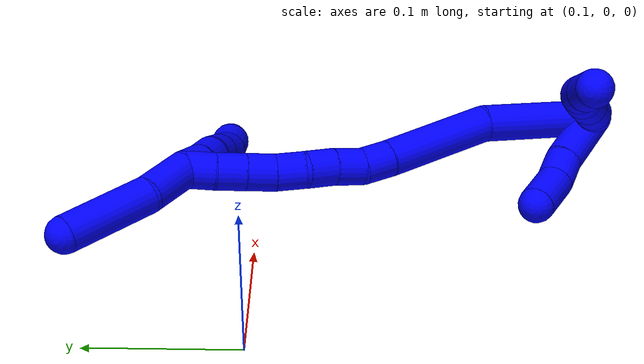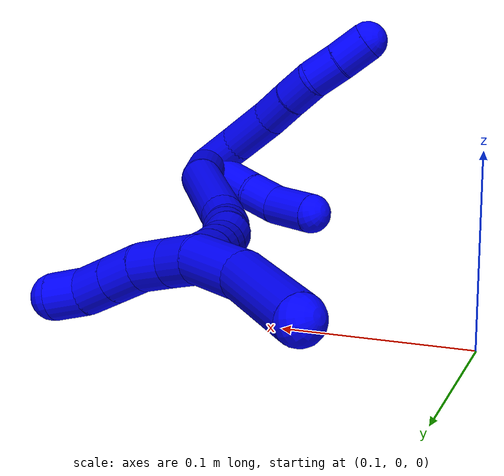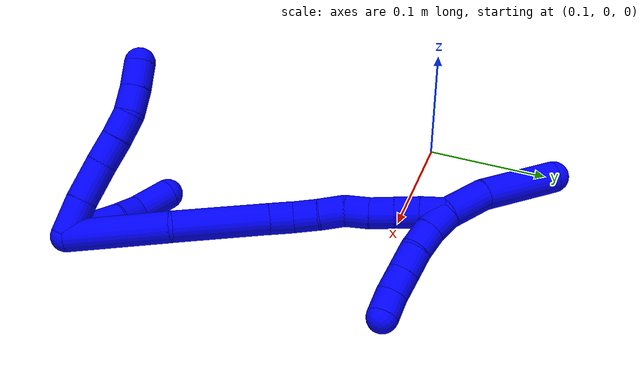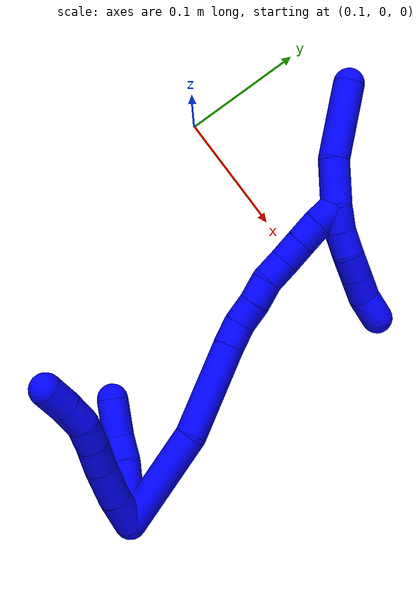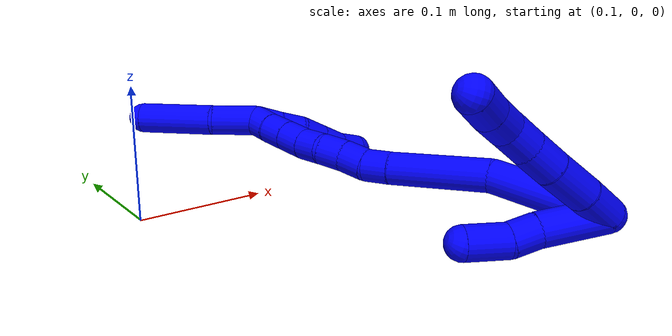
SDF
<sdf version="1.7">
 <world name="default">
  <model name="1">
   <static>0</static>
   <link name="1">
    <collision name="collision-cylinder-e_1_2_8">
     <pose>-0.003583 -0.004819 -0.0138 2.8056 -0.240364 -1.23756</pose>
     <geometry><cylinder><radius>0.0125</radius><length>0.0301</length></cylinder></geometry>
     <surface>
      <friction><ode><mu>1.16</mu><mu2>1.16</mu2><slip1>0</slip1><slip2>0</slip2></ode></friction>
      <contact><ode><kp>1e+06</kp><kd>1</kd><max_vel>0</max_vel><min_depth>0.001</min_depth></ode></contact>
     </surface>
    </collision>
    <visual name="visual-cylinder-e_1_2_8">
     <pose>-0.003583 -0.004819 -0.0138 2.8056 -0.240364 -1.23756</pose>
     <geometry><cylinder><radius>0.0125</radius><length>0.0301</length></cylinder></geometry>
     <material><ambient>0 0 1 1</ambient></material>
    </visual>
    <collision name="collision-cylinder-e_2_8_9">
     <pose>-0.011387 -0.013422 -0.043083 2.90197 -0.258942 -1.64907</pose>
     <geometry><cylinder><radius>0.0125</radius><length>0.032975</length></cylinder></geometry>
     <surface>
      <friction><ode><mu>1.16</mu><mu2>1.16</mu2><slip1>0</slip1><slip2>0</slip2></ode></friction>
      <contact><ode><kp>1e+06</kp><kd>1</kd><max_vel>0</max_vel><min_depth>0.001</min_depth></ode></contact>
     </surface>
    </collision>
    <visual name="visual-cylinder-e_2_8_9">
     <pose>-0.011387 -0.013422 -0.043083 2.90197 -0.258942 -1.64907</pose>
     <geometry><cylinder><radius>0.0125</radius><length>0.032975</length></cylinder></geometry>
     <material><ambient>0 0 1 1</ambient></material>
    </visual>
    <collision name="collision-cylinder-e_3_9_10">
     <pose>-0.01925 -0.019206 -0.069372 2.95849 -0.319868 -2.10675</pose>
     <geometry><cylinder><radius>0.0125</radius><length>0.023157</length></cylinder></geometry>
     <surface>
      <friction><ode><mu>1.16</mu><mu2>1.16</mu2><slip1>0</slip1><slip2>0</slip2></ode></friction>
      <contact><ode><kp>1e+06</kp><kd>1</kd><max_vel>0</max_vel><min_depth>0.001</min_depth></ode></contact>
     </surface>
    </collision>
    <visual name="visual-cylinder-e_3_9_10">
     <pose>-0.01925 -0.019206 -0.069372 2.95849 -0.319868 -2.10675</pose>
     <geometry><cylinder><radius>0.0125</radius><length>0.023157</length></cylinder></geometry>
     <material><ambient>0 0 1 1</ambient></material>
    </visual>
    <collision name="collision-cylinder-e_4_10_11">
     <pose>-0.025966 -0.023775 -0.090021 2.88638 -0.293655 -1.71238</pose>
     <geometry><cylinder><radius>0.0125</radius><length>0.021251</length></cylinder></geometry>
     <surface>
      <friction><ode><mu>1.16</mu><mu2>1.16</mu2><slip1>0</slip1><slip2>0</slip2></ode></friction>
      <contact><ode><kp>1e+06</kp><kd>1</kd><max_vel>0</max_vel><min_depth>0.001</min_depth></ode></contact>
     </surface>
    </collision>
    <visual name="visual-cylinder-e_4_10_11">
     <pose>-0.025966 -0.023775 -0.090021 2.88638 -0.293655 -1.71238</pose>
     <geometry><cylinder><radius>0.0125</radius><length>0.021251</length></cylinder></geometry>
     <material><ambient>0 0 1 1</ambient></material>
    </visual>
    <collision name="collision-cylinder-e_5_11_12">
     <pose>-0.0305 -0.031369 -0.108844 2.63133 -0.140719 -0.527826</pose>
     <geometry><cylinder><radius>0.0125</radius><length>0.02079</length></cylinder></geometry>
     <surface>
      <friction><ode><mu>1.16</mu><mu2>1.16</mu2><slip1>0</slip1><slip2>0</slip2></ode></friction>
      <contact><ode><kp>1e+06</kp><kd>1</kd><max_vel>0</max_vel><min_depth>0.001</min_depth></ode></contact>
     </surface>
    </collision>
    <visual name="visual-cylinder-e_5_11_12">
     <pose>-0.0305 -0.031369 -0.108844 2.63133 -0.140719 -0.527826</pose>
     <geometry><cylinder><radius>0.0125</radius><length>0.02079</length></cylinder></geometry>
     <material><ambient>0 0 1 1</ambient></material>
    </visual>
    <collision name="collision-cylinder-e_6_12_6">
     <pose>-0.033733 -0.042397 -0.126704 2.54721 -0.164187 -0.524917</pose>
     <geometry><cylinder><radius>0.0125</radius><length>0.021726</length></cylinder></geometry>
     <surface>
      <friction><ode><mu>1.16</mu><mu2>1.16</mu2><slip1>0</slip1><slip2>0</slip2></ode></friction>
      <contact><ode><kp>1e+06</kp><kd>1</kd><max_vel>0</max_vel><min_depth>0.001</min_depth></ode></contact>
     </surface>
    </collision>
    <visual name="visual-cylinder-e_6_12_6">
     <pose>-0.033733 -0.042397 -0.126704 2.54721 -0.164187 -0.524917</pose>
     <geometry><cylinder><radius>0.0125</radius><length>0.021726</length></cylinder></geometry>
     <material><ambient>0 0 1 1</ambient></material>
    </visual>
    <collision name="collision-cylinder-e_1_2_13">
     <pose>0.009976 0.006897 -0.020728 -2.82036 0.428388 -1.8613</pose>
     <geometry><cylinder><radius>0.0125</radius><length>0.048032</length></cylinder></geometry>
     <surface>
      <friction><ode><mu>1.16</mu><mu2>1.16</mu2><slip1>0</slip1><slip2>0</slip2></ode></friction>
      <contact><ode><kp>1e+06</kp><kd>1</kd><max_vel>0</max_vel><min_depth>0.001</min_depth></ode></contact>
     </surface>
    </collision>
    <visual name="visual-cylinder-e_1_2_13">
     <pose>0.009976 0.006897 -0.020728 -2.82036 0.428388 -1.8613</pose>
     <geometry><cylinder><radius>0.0125</radius><length>0.048032</length></cylinder></geometry>
     <material><ambient>0 0 1 1</ambient></material>
    </visual>
    <collision name="collision-cylinder-e_2_13_14">
     <pose>0.025456 0.015484 -0.050087 -2.94827 0.559146 -2.49016</pose>
     <geometry><cylinder><radius>0.0125</radius><length>0.020749</length></cylinder></geometry>
     <surface>
      <friction><ode><mu>1.16</mu><mu2>1.16</mu2><slip1>0</slip1><slip2>0</slip2></ode></friction>
      <contact><ode><kp>1e+06</kp><kd>1</kd><max_vel>0</max_vel><min_depth>0.001</min_depth></ode></contact>
     </surface>
    </collision>
    <visual name="visual-cylinder-e_2_13_14">
     <pose>0.025456 0.015484 -0.050087 -2.94827 0.559146 -2.49016</pose>
     <geometry><cylinder><radius>0.0125</radius><length>0.020749</length></cylinder></geometry>
     <material><ambient>0 0 1 1</ambient></material>
    </visual>
    <collision name="collision-cylinder-e_3_14_5">
     <pose>0.035246 0.019913 -0.073475 -2.95806 0.278187 -1.97857</pose>
     <geometry><cylinder><radius>0.0125</radius><length>0.031219</length></cylinder></geometry>
     <surface>
      <friction><ode><mu>1.16</mu><mu2>1.16</mu2><slip1>0</slip1><slip2>0</slip2></ode></friction>
      <contact><ode><kp>1e+06</kp><kd>1</kd><max_vel>0</max_vel><min_depth>0.001</min_depth></ode></contact>
     </surface>
    </collision>
    <visual name="visual-cylinder-e_3_14_5">
     <pose>0.035246 0.019913 -0.073475 -2.95806 0.278187 -1.97857</pose>
     <geometry><cylinder><radius>0.0125</radius><length>0.031219</length></cylinder></geometry>
     <material><ambient>0 0 1 1</ambient></material>
    </visual>
    <collision name="collision-cylinder-e_1_2_15">
     <pose>-0.008202 0.029589 -0.028339 -2.33461 -0.197569 0.456215</pose>
     <geometry><cylinder><radius>0.0125</radius><length>0.083567</length></cylinder></geometry>
     <surface>
      <friction><ode><mu>1.16</mu><mu2>1.16</mu2><slip1>0</slip1><slip2>0</slip2></ode></friction>
      <contact><ode><kp>1e+06</kp><kd>1</kd><max_vel>0</max_vel><min_depth>0.001</min_depth></ode></contact>
     </surface>
    </collision>
    <visual name="visual-cylinder-e_1_2_15">
     <pose>-0.008202 0.029589 -0.028339 -2.33461 -0.197569 0.456215</pose>
     <geometry><cylinder><radius>0.0125</radius><length>0.083567</length></cylinder></geometry>
     <material><ambient>0 0 1 1</ambient></material>
    </visual>
    <collision name="collision-cylinder-e_2_15_16">
     <pose>-0.01384 0.084177 -0.085011 -2.41864 0.067739 -0.178753</pose>
     <geometry><cylinder><radius>0.0125</radius><length>0.075744</length></cylinder></geometry>
     <surface>
      <friction><ode><mu>1.16</mu><mu2>1.16</mu2><slip1>0</slip1><slip2>0</slip2></ode></friction>
      <contact><ode><kp>1e+06</kp><kd>1</kd><max_vel>0</max_vel><min_depth>0.001</min_depth></ode></contact>
     </surface>
    </collision>
    <visual name="visual-cylinder-e_2_15_16">
     <pose>-0.01384 0.084177 -0.085011 -2.41864 0.067739 -0.178753</pose>
     <geometry><cylinder><radius>0.0125</radius><length>0.075744</length></cylinder></geometry>
     <material><ambient>0 0 1 1</ambient></material>
    </visual>
    <collision name="collision-cylinder-e_3_16_17">
     <pose>-0.011128 0.116044 -0.120724 -2.39205 0.014653 -0.037247</pose>
     <geometry><cylinder><radius>0.0125</radius><length>0.020165</length></cylinder></geometry>
     <surface>
      <friction><ode><mu>1.16</mu><mu2>1.16</mu2><slip1>0</slip1><slip2>0</slip2></ode></friction>
      <contact><ode><kp>1e+06</kp><kd>1</kd><max_vel>0</max_vel><min_depth>0.001</min_depth></ode></contact>
     </surface>
    </collision>
    <visual name="visual-cylinder-e_3_16_17">
     <pose>-0.011128 0.116044 -0.120724 -2.39205 0.014653 -0.037247</pose>
     <geometry><cylinder><radius>0.0125</radius><length>0.020165</length></cylinder></geometry>
     <material><ambient>0 0 1 1</ambient></material>
    </visual>
    <collision name="collision-cylinder-e_4_17_18">
     <pose>-0.01343 0.129975 -0.134813 -2.33055 -0.246314 0.561423</pose>
     <geometry><cylinder><radius>0.0125</radius><length>0.020089</length></cylinder></geometry>
     <surface>
      <friction><ode><mu>1.16</mu><mu2>1.16</mu2><slip1>0</slip1><slip2>0</slip2></ode></friction>
      <contact><ode><kp>1e+06</kp><kd>1</kd><max_vel>0</max_vel><min_depth>0.001</min_depth></ode></contact>
     </surface>
    </collision>
    <visual name="visual-cylinder-e_4_17_18">
     <pose>-0.01343 0.129975 -0.134813 -2.33055 -0.246314 0.561423</pose>
     <geometry><cylinder><radius>0.0125</radius><length>0.020089</length></cylinder></geometry>
     <material><ambient>0 0 1 1</ambient></material>
    </visual>
    <collision name="collision-cylinder-e_5_18_19">
     <pose>-0.017456 0.143716 -0.149038 -2.41512 -0.155598 0.404575</pose>
     <geometry><cylinder><radius>0.0125</radius><length>0.020354</length></cylinder></geometry>
     <surface>
      <friction><ode><mu>1.16</mu><mu2>1.16</mu2><slip1>0</slip1><slip2>0</slip2></ode></friction>
      <contact><ode><kp>1e+06</kp><kd>1</kd><max_vel>0</max_vel><min_depth>0.001</min_depth></ode></contact>
     </surface>
    </collision>
    <visual name="visual-cylinder-e_5_18_19">
     <pose>-0.017456 0.143716 -0.149038 -2.41512 -0.155598 0.404575</pose>
     <geometry><cylinder><radius>0.0125</radius><length>0.020354</length></cylinder></geometry>
     <material><ambient>0 0 1 1</ambient></material>
    </visual>
    <collision name="collision-cylinder-e_6_19_20">
     <pose>-0.020557 0.158672 -0.161974 -2.15061 -0.152788 0.281377</pose>
     <geometry><cylinder><radius>0.0125</radius><length>0.020021</length></cylinder></geometry>
     <surface>
      <friction><ode><mu>1.16</mu><mu2>1.16</mu2><slip1>0</slip1><slip2>0</slip2></ode></friction>
      <contact><ode><kp>1e+06</kp><kd>1</kd><max_vel>0</max_vel><min_depth>0.001</min_depth></ode></contact>
     </surface>
    </collision>
    <visual name="visual-cylinder-e_6_19_20">
     <pose>-0.020557 0.158672 -0.161974 -2.15061 -0.152788 0.281377</pose>
     <geometry><cylinder><radius>0.0125</radius><length>0.020021</length></cylinder></geometry>
     <material><ambient>0 0 1 1</ambient></material>
    </visual>
    <collision name="collision-cylinder-e_7_20_21">
     <pose>-0.024772 0.174543 -0.173363 -2.23685 -0.271774 0.548511</pose>
     <geometry><cylinder><radius>0.0125</radius><length>0.020054</length></cylinder></geometry>
     <surface>
      <friction><ode><mu>1.16</mu><mu2>1.16</mu2><slip1>0</slip1><slip2>0</slip2></ode></friction>
      <contact><ode><kp>1e+06</kp><kd>1</kd><max_vel>0</max_vel><min_depth>0.001</min_depth></ode></contact>
     </surface>
    </collision>
    <visual name="visual-cylinder-e_7_20_21">
     <pose>-0.024772 0.174543 -0.173363 -2.23685 -0.271774 0.548511</pose>
     <geometry><cylinder><radius>0.0125</radius><length>0.020054</length></cylinder></geometry>
     <material><ambient>0 0 1 1</ambient></material>
    </visual>
    <collision name="collision-cylinder-e_8_21_22">
     <pose>-0.030122 0.189755 -0.185241 -2.23064 -0.269002 0.539069</pose>
     <geometry><cylinder><radius>0.0125</radius><length>0.02</length></cylinder></geometry>
     <surface>
      <friction><ode><mu>1.16</mu><mu2>1.16</mu2><slip1>0</slip1><slip2>0</slip2></ode></friction>
      <contact><ode><kp>1e+06</kp><kd>1</kd><max_vel>0</max_vel><min_depth>0.001</min_depth></ode></contact>
     </surface>
    </collision>
    <visual name="visual-cylinder-e_8_21_22">
     <pose>-0.030122 0.189755 -0.185241 -2.23064 -0.269002 0.539069</pose>
     <geometry><cylinder><radius>0.0125</radius><length>0.02</length></cylinder></geometry>
     <material><ambient>0 0 1 1</ambient></material>
    </visual>
    <collision name="collision-cylinder-e_9_22_1">
     <pose>-0.035837 0.205382 -0.196301 -2.1422 -0.310631 0.558642</pose>
     <geometry><cylinder><radius>0.0125</radius><length>0.020004</length></cylinder></geometry>
     <surface>
      <friction><ode><mu>1.16</mu><mu2>1.16</mu2><slip1>0</slip1><slip2>0</slip2></ode></friction>
      <contact><ode><kp>1e+06</kp><kd>1</kd><max_vel>0</max_vel><min_depth>0.001</min_depth></ode></contact>
     </surface>
    </collision>
    <visual name="visual-cylinder-e_9_22_1">
     <pose>-0.035837 0.205382 -0.196301 -2.1422 -0.310631 0.558642</pose>
     <geometry><cylinder><radius>0.0125</radius><length>0.020004</length></cylinder></geometry>
     <material><ambient>0 0 1 1</ambient></material>
    </visual>
    <collision name="collision-cylinder-e_1_1_23">
     <pose>-0.039031 0.212821 -0.191469 0.057209 -0.013742 -0.000393</pose>
     <geometry><cylinder><radius>0.0125</radius><length>0.02</length></cylinder></geometry>
     <surface>
      <friction><ode><mu>1.16</mu><mu2>1.16</mu2><slip1>0</slip1><slip2>0</slip2></ode></friction>
      <contact><ode><kp>1e+06</kp><kd>1</kd><max_vel>0</max_vel><min_depth>0.001</min_depth></ode></contact>
     </surface>
    </collision>
    <visual name="visual-cylinder-e_1_1_23">
     <pose>-0.039031 0.212821 -0.191469 0.057209 -0.013742 -0.000393</pose>
     <geometry><cylinder><radius>0.0125</radius><length>0.02</length></cylinder></geometry>
     <material><ambient>0 0 1 1</ambient></material>
    </visual>
    <collision name="collision-cylinder-e_2_23_24">
     <pose>-0.040047 0.213252 -0.171575 -0.100837 -0.087941 0.00444</pose>
     <geometry><cylinder><radius>0.0125</radius><length>0.02</length></cylinder></geometry>
     <surface>
      <friction><ode><mu>1.16</mu><mu2>1.16</mu2><slip1>0</slip1><slip2>0</slip2></ode></friction>
      <contact><ode><kp>1e+06</kp><kd>1</kd><max_vel>0</max_vel><min_depth>0.001</min_depth></ode></contact>
     </surface>
    </collision>
    <visual name="visual-cylinder-e_2_23_24">
     <pose>-0.040047 0.213252 -0.171575 -0.100837 -0.087941 0.00444</pose>
     <geometry><cylinder><radius>0.0125</radius><length>0.02</length></cylinder></geometry>
     <material><ambient>0 0 1 1</ambient></material>
    </visual>
    <collision name="collision-cylinder-e_3_24_25">
     <pose>-0.040141 0.216462 -0.151943 -0.223235 0.078488 -0.008802</pose>
     <geometry><cylinder><radius>0.0125</radius><length>0.02</length></cylinder></geometry>
     <surface>
      <friction><ode><mu>1.16</mu><mu2>1.16</mu2><slip1>0</slip1><slip2>0</slip2></ode></friction>
      <contact><ode><kp>1e+06</kp><kd>1</kd><max_vel>0</max_vel><min_depth>0.001</min_depth></ode></contact>
     </surface>
    </collision>
    <visual name="visual-cylinder-e_3_24_25">
     <pose>-0.040141 0.216462 -0.151943 -0.223235 0.078488 -0.008802</pose>
     <geometry><cylinder><radius>0.0125</radius><length>0.02</length></cylinder></geometry>
     <material><ambient>0 0 1 1</ambient></material>
    </visual>
    <collision name="collision-cylinder-e_4_25_26">
     <pose>-0.038575 0.220853 -0.132494 -0.220811 0.078294 -0.008684</pose>
     <geometry><cylinder><radius>0.0125</radius><length>0.02</length></cylinder></geometry>
     <surface>
      <friction><ode><mu>1.16</mu><mu2>1.16</mu2><slip1>0</slip1><slip2>0</slip2></ode></friction>
      <contact><ode><kp>1e+06</kp><kd>1</kd><max_vel>0</max_vel><min_depth>0.001</min_depth></ode></contact>
     </surface>
    </collision>
    <visual name="visual-cylinder-e_4_25_26">
     <pose>-0.038575 0.220853 -0.132494 -0.220811 0.078294 -0.008684</pose>
     <geometry><cylinder><radius>0.0125</radius><length>0.02</length></cylinder></geometry>
     <material><ambient>0 0 1 1</ambient></material>
    </visual>
    <collision name="collision-cylinder-e_5_26_4">
     <pose>-0.039512 0.226094 -0.113402 -0.315666 -0.172776 0.027565</pose>
     <geometry><cylinder><radius>0.0125</radius><length>0.02</length></cylinder></geometry>
     <surface>
      <friction><ode><mu>1.16</mu><mu2>1.16</mu2><slip1>0</slip1><slip2>0</slip2></ode></friction>
      <contact><ode><kp>1e+06</kp><kd>1</kd><max_vel>0</max_vel><min_depth>0.001</min_depth></ode></contact>
     </surface>
    </collision>
    <visual name="visual-cylinder-e_5_26_4">
     <pose>-0.039512 0.226094 -0.113402 -0.315666 -0.172776 0.027565</pose>
     <geometry><cylinder><radius>0.0125</radius><length>0.02</length></cylinder></geometry>
     <material><ambient>0 0 1 1</ambient></material>
    </visual>
    <collision name="collision-cylinder-e_1_1_27">
     <pose>-0.034978 0.218607 -0.218745 -2.84876 0.213467 -1.25659</pose>
     <geometry><cylinder><radius>0.0125</radius><length>0.036964</length></cylinder></geometry>
     <surface>
      <friction><ode><mu>1.16</mu><mu2>1.16</mu2><slip1>0</slip1><slip2>0</slip2></ode></friction>
      <contact><ode><kp>1e+06</kp><kd>1</kd><max_vel>0</max_vel><min_depth>0.001</min_depth></ode></contact>
     </surface>
    </collision>
    <visual name="visual-cylinder-e_1_1_27">
     <pose>-0.034978 0.218607 -0.218745 -2.84876 0.213467 -1.25659</pose>
     <geometry><cylinder><radius>0.0125</radius><length>0.036964</length></cylinder></geometry>
     <material><ambient>0 0 1 1</ambient></material>
    </visual>
    <collision name="collision-cylinder-e_2_27_3">
     <pose>-0.026845 0.23971 -0.26293 -2.60791 0.134217 -0.482168</pose>
     <geometry><cylinder><radius>0.0125</radius><length>0.063036</length></cylinder></geometry>
     <surface>
      <friction><ode><mu>1.16</mu><mu2>1.16</mu2><slip1>0</slip1><slip2>0</slip2></ode></friction>
      <contact><ode><kp>1e+06</kp><kd>1</kd><max_vel>0</max_vel><min_depth>0.001</min_depth></ode></contact>
     </surface>
    </collision>
    <visual name="visual-cylinder-e_2_27_3">
     <pose>-0.026845 0.23971 -0.26293 -2.60791 0.134217 -0.482168</pose>
     <geometry><cylinder><radius>0.0125</radius><length>0.063036</length></cylinder></geometry>
     <material><ambient>0 0 1 1</ambient></material>
    </visual>
    <collision name="collision-sphere-3">
     <pose>-0.022628 0.255599 -0.289821 0 -0 0</pose>
     <geometry><sphere><radius>0.0125</radius></sphere></geometry>
     <surface>
      <friction><ode><mu>1.16</mu><mu2>1.16</mu2><slip1>0</slip1><slip2>0</slip2></ode></friction>
      <contact><ode><kp>1e+06</kp><kd>1</kd><max_vel>0</max_vel><min_depth>0.001</min_depth></ode></contact>
     </surface>
    </collision>
    <visual name="visual-sphere-3">
     <pose>-0.022628 0.255599 -0.289821 0 -0 0</pose>
     <geometry><sphere><radius>0.0125</radius></sphere></geometry>
     <material><ambient>0 0 1 1</ambient></material>
    </visual>
    <collision name="collision-sphere-27">
     <pose>-0.031063 0.223821 -0.236039 0 -0 0</pose>
     <geometry><sphere><radius>0.0125</radius></sphere></geometry>
     <surface>
      <friction><ode><mu>1.16</mu><mu2>1.16</mu2><slip1>0</slip1><slip2>0</slip2></ode></friction>
      <contact><ode><kp>1e+06</kp><kd>1</kd><max_vel>0</max_vel><min_depth>0.001</min_depth></ode></contact>
     </surface>
    </collision>
    <visual name="visual-sphere-27">
     <pose>-0.031063 0.223821 -0.236039 0 -0 0</pose>
     <geometry><sphere><radius>0.0125</radius></sphere></geometry>
     <material><ambient>0 0 1 1</ambient></material>
    </visual>
    <collision name="collision-sphere-4">
     <pose>-0.041231 0.229153 -0.104037 0 -0 0</pose>
     <geometry><sphere><radius>0.0125</radius></sphere></geometry>
     <surface>
      <friction><ode><mu>1.16</mu><mu2>1.16</mu2><slip1>0</slip1><slip2>0</slip2></ode></friction>
      <contact><ode><kp>1e+06</kp><kd>1</kd><max_vel>0</max_vel><min_depth>0.001</min_depth></ode></contact>
     </surface>
    </collision>
    <visual name="visual-sphere-4">
     <pose>-0.041231 0.229153 -0.104037 0 -0 0</pose>
     <geometry><sphere><radius>0.0125</radius></sphere></geometry>
     <material><ambient>0 0 1 1</ambient></material>
    </visual>
    <collision name="collision-sphere-26">
     <pose>-0.037793 0.223036 -0.122766 0 -0 0</pose>
     <geometry><sphere><radius>0.0125</radius></sphere></geometry>
     <surface>
      <friction><ode><mu>1.16</mu><mu2>1.16</mu2><slip1>0</slip1><slip2>0</slip2></ode></friction>
      <contact><ode><kp>1e+06</kp><kd>1</kd><max_vel>0</max_vel><min_depth>0.001</min_depth></ode></contact>
     </surface>
    </collision>
    <visual name="visual-sphere-26">
     <pose>-0.037793 0.223036 -0.122766 0 -0 0</pose>
     <geometry><sphere><radius>0.0125</radius></sphere></geometry>
     <material><ambient>0 0 1 1</ambient></material>
    </visual>
    <collision name="collision-sphere-25">
     <pose>-0.039357 0.218669 -0.142221 0 -0 0</pose>
     <geometry><sphere><radius>0.0125</radius></sphere></geometry>
     <surface>
      <friction><ode><mu>1.16</mu><mu2>1.16</mu2><slip1>0</slip1><slip2>0</slip2></ode></friction>
      <contact><ode><kp>1e+06</kp><kd>1</kd><max_vel>0</max_vel><min_depth>0.001</min_depth></ode></contact>
     </surface>
    </collision>
    <visual name="visual-sphere-25">
     <pose>-0.039357 0.218669 -0.142221 0 -0 0</pose>
     <geometry><sphere><radius>0.0125</radius></sphere></geometry>
     <material><ambient>0 0 1 1</ambient></material>
    </visual>
    <collision name="collision-sphere-24">
     <pose>-0.040925 0.214255 -0.161665 0 -0 0</pose>
     <geometry><sphere><radius>0.0125</radius></sphere></geometry>
     <surface>
      <friction><ode><mu>1.16</mu><mu2>1.16</mu2><slip1>0</slip1><slip2>0</slip2></ode></friction>
      <contact><ode><kp>1e+06</kp><kd>1</kd><max_vel>0</max_vel><min_depth>0.001</min_depth></ode></contact>
     </surface>
    </collision>
    <visual name="visual-sphere-24">
     <pose>-0.040925 0.214255 -0.161665 0 -0 0</pose>
     <geometry><sphere><radius>0.0125</radius></sphere></geometry>
     <material><ambient>0 0 1 1</ambient></material>
    </visual>
    <collision name="collision-sphere-23">
     <pose>-0.039169 0.212249 -0.181486 0 -0 0</pose>
     <geometry><sphere><radius>0.0125</radius></sphere></geometry>
     <surface>
      <friction><ode><mu>1.16</mu><mu2>1.16</mu2><slip1>0</slip1><slip2>0</slip2></ode></friction>
      <contact><ode><kp>1e+06</kp><kd>1</kd><max_vel>0</max_vel><min_depth>0.001</min_depth></ode></contact>
     </surface>
    </collision>
    <visual name="visual-sphere-23">
     <pose>-0.039169 0.212249 -0.181486 0 -0 0</pose>
     <geometry><sphere><radius>0.0125</radius></sphere></geometry>
     <material><ambient>0 0 1 1</ambient></material>
    </visual>
    <collision name="collision-sphere-1">
     <pose>-0.038894 0.213393 -0.201451 0 -0 0</pose>
     <geometry><sphere><radius>0.0125</radius></sphere></geometry>
     <surface>
      <friction><ode><mu>1.16</mu><mu2>1.16</mu2><slip1>0</slip1><slip2>0</slip2></ode></friction>
      <contact><ode><kp>1e+06</kp><kd>1</kd><max_vel>0</max_vel><min_depth>0.001</min_depth></ode></contact>
     </surface>
    </collision>
    <visual name="visual-sphere-1">
     <pose>-0.038894 0.213393 -0.201451 0 -0 0</pose>
     <geometry><sphere><radius>0.0125</radius></sphere></geometry>
     <material><ambient>0 0 1 1</ambient></material>
    </visual>
    <collision name="collision-sphere-22">
     <pose>-0.032779 0.197372 -0.191151 0 -0 0</pose>
     <geometry><sphere><radius>0.0125</radius></sphere></geometry>
     <surface>
      <friction><ode><mu>1.16</mu><mu2>1.16</mu2><slip1>0</slip1><slip2>0</slip2></ode></friction>
      <contact><ode><kp>1e+06</kp><kd>1</kd><max_vel>0</max_vel><min_depth>0.001</min_depth></ode></contact>
     </surface>
    </collision>
    <visual name="visual-sphere-22">
     <pose>-0.032779 0.197372 -0.191151 0 -0 0</pose>
     <geometry><sphere><radius>0.0125</radius></sphere></geometry>
     <material><ambient>0 0 1 1</ambient></material>
    </visual>
    <collision name="collision-sphere-21">
     <pose>-0.027464 0.182138 -0.179331 0 -0 0</pose>
     <geometry><sphere><radius>0.0125</radius></sphere></geometry>
     <surface>
      <friction><ode><mu>1.16</mu><mu2>1.16</mu2><slip1>0</slip1><slip2>0</slip2></ode></friction>
      <contact><ode><kp>1e+06</kp><kd>1</kd><max_vel>0</max_vel><min_depth>0.001</min_depth></ode></contact>
     </surface>
    </collision>
    <visual name="visual-sphere-21">
     <pose>-0.027464 0.182138 -0.179331 0 -0 0</pose>
     <geometry><sphere><radius>0.0125</radius></sphere></geometry>
     <material><ambient>0 0 1 1</ambient></material>
    </visual>
    <collision name="collision-sphere-12">
     <pose>-0.031958 -0.036396 -0.117825 0 -0 0</pose>
     <geometry><sphere><radius>0.0125</radius></sphere></geometry>
     <surface>
      <friction><ode><mu>1.16</mu><mu2>1.16</mu2><slip1>0</slip1><slip2>0</slip2></ode></friction>
      <contact><ode><kp>1e+06</kp><kd>1</kd><max_vel>0</max_vel><min_depth>0.001</min_depth></ode></contact>
     </surface>
    </collision>
    <visual name="visual-sphere-12">
     <pose>-0.031958 -0.036396 -0.117825 0 -0 0</pose>
     <geometry><sphere><radius>0.0125</radius></sphere></geometry>
     <material><ambient>0 0 1 1</ambient></material>
    </visual>
    <collision name="collision-sphere-11">
     <pose>-0.029042 -0.026342 -0.099863 0 -0 0</pose>
     <geometry><sphere><radius>0.0125</radius></sphere></geometry>
     <surface>
      <friction><ode><mu>1.16</mu><mu2>1.16</mu2><slip1>0</slip1><slip2>0</slip2></ode></friction>
      <contact><ode><kp>1e+06</kp><kd>1</kd><max_vel>0</max_vel><min_depth>0.001</min_depth></ode></contact>
     </surface>
    </collision>
    <visual name="visual-sphere-11">
     <pose>-0.029042 -0.026342 -0.099863 0 -0 0</pose>
     <geometry><sphere><radius>0.0125</radius></sphere></geometry>
     <material><ambient>0 0 1 1</ambient></material>
    </visual>
    <collision name="collision-sphere-10">
     <pose>-0.022891 -0.021207 -0.08018 0 -0 0</pose>
     <geometry><sphere><radius>0.0125</radius></sphere></geometry>
     <surface>
      <friction><ode><mu>1.16</mu><mu2>1.16</mu2><slip1>0</slip1><slip2>0</slip2></ode></friction>
      <contact><ode><kp>1e+06</kp><kd>1</kd><max_vel>0</max_vel><min_depth>0.001</min_depth></ode></contact>
     </surface>
    </collision>
    <visual name="visual-sphere-10">
     <pose>-0.022891 -0.021207 -0.08018 0 -0 0</pose>
     <geometry><sphere><radius>0.0125</radius></sphere></geometry>
     <material><ambient>0 0 1 1</ambient></material>
    </visual>
    <collision name="collision-sphere-9">
     <pose>-0.015609 -0.017204 -0.058565 0 -0 0</pose>
     <geometry><sphere><radius>0.0125</radius></sphere></geometry>
     <surface>
      <friction><ode><mu>1.16</mu><mu2>1.16</mu2><slip1>0</slip1><slip2>0</slip2></ode></friction>
      <contact><ode><kp>1e+06</kp><kd>1</kd><max_vel>0</max_vel><min_depth>0.001</min_depth></ode></contact>
     </surface>
    </collision>
    <visual name="visual-sphere-9">
     <pose>-0.015609 -0.017204 -0.058565 0 -0 0</pose>
     <geometry><sphere><radius>0.0125</radius></sphere></geometry>
     <material><ambient>0 0 1 1</ambient></material>
    </visual>
    <collision name="collision-sphere-2">
     <geometry><sphere><radius>0.0125</radius></sphere></geometry>
     <surface>
      <friction><ode><mu>1.16</mu><mu2>1.16</mu2><slip1>0</slip1><slip2>0</slip2></ode></friction>
      <contact><ode><kp>1e+06</kp><kd>1</kd><max_vel>0</max_vel><min_depth>0.001</min_depth></ode></contact>
     </surface>
    </collision>
    <visual name="visual-sphere-2">
     <geometry><sphere><radius>0.0125</radius></sphere></geometry>
     <material><ambient>0 0 1 1</ambient></material>
    </visual>
    <collision name="collision-sphere-19">
     <pose>-0.019033 0.150395 -0.156554 0 -0 0</pose>
     <geometry><sphere><radius>0.0125</radius></sphere></geometry>
     <surface>
      <friction><ode><mu>1.16</mu><mu2>1.16</mu2><slip1>0</slip1><slip2>0</slip2></ode></friction>
      <contact><ode><kp>1e+06</kp><kd>1</kd><max_vel>0</max_vel><min_depth>0.001</min_depth></ode></contact>
     </surface>
    </collision>
    <visual name="visual-sphere-19">
     <pose>-0.019033 0.150395 -0.156554 0 -0 0</pose>
     <geometry><sphere><radius>0.0125</radius></sphere></geometry>
     <material><ambient>0 0 1 1</ambient></material>
    </visual>
    <collision name="collision-sphere-8">
     <pose>-0.007166 -0.009639 -0.0276 0 -0 0</pose>
     <geometry><sphere><radius>0.0125</radius></sphere></geometry>
     <surface>
      <friction><ode><mu>1.16</mu><mu2>1.16</mu2><slip1>0</slip1><slip2>0</slip2></ode></friction>
      <contact><ode><kp>1e+06</kp><kd>1</kd><max_vel>0</max_vel><min_depth>0.001</min_depth></ode></contact>
     </surface>
    </collision>
    <visual name="visual-sphere-8">
     <pose>-0.007166 -0.009639 -0.0276 0 -0 0</pose>
     <geometry><sphere><radius>0.0125</radius></sphere></geometry>
     <material><ambient>0 0 1 1</ambient></material>
    </visual>
    <collision name="collision-sphere-6">
     <pose>-0.035509 -0.048399 -0.135583 0 -0 0</pose>
     <geometry><sphere><radius>0.0125</radius></sphere></geometry>
     <surface>
      <friction><ode><mu>1.16</mu><mu2>1.16</mu2><slip1>0</slip1><slip2>0</slip2></ode></friction>
      <contact><ode><kp>1e+06</kp><kd>1</kd><max_vel>0</max_vel><min_depth>0.001</min_depth></ode></contact>
     </surface>
    </collision>
    <visual name="visual-sphere-6">
     <pose>-0.035509 -0.048399 -0.135583 0 -0 0</pose>
     <geometry><sphere><radius>0.0125</radius></sphere></geometry>
     <material><ambient>0 0 1 1</ambient></material>
    </visual>
    <collision name="collision-sphere-13">
     <pose>0.019953 0.013795 -0.041457 0 -0 0</pose>
     <geometry><sphere><radius>0.0125</radius></sphere></geometry>
     <surface>
      <friction><ode><mu>1.16</mu><mu2>1.16</mu2><slip1>0</slip1><slip2>0</slip2></ode></friction>
      <contact><ode><kp>1e+06</kp><kd>1</kd><max_vel>0</max_vel><min_depth>0.001</min_depth></ode></contact>
     </surface>
    </collision>
    <visual name="visual-sphere-13">
     <pose>0.019953 0.013795 -0.041457 0 -0 0</pose>
     <geometry><sphere><radius>0.0125</radius></sphere></geometry>
     <material><ambient>0 0 1 1</ambient></material>
    </visual>
    <collision name="collision-sphere-14">
     <pose>0.030959 0.017174 -0.058718 0 -0 0</pose>
     <geometry><sphere><radius>0.0125</radius></sphere></geometry>
     <surface>
      <friction><ode><mu>1.16</mu><mu2>1.16</mu2><slip1>0</slip1><slip2>0</slip2></ode></friction>
      <contact><ode><kp>1e+06</kp><kd>1</kd><max_vel>0</max_vel><min_depth>0.001</min_depth></ode></contact>
     </surface>
    </collision>
    <visual name="visual-sphere-14">
     <pose>0.030959 0.017174 -0.058718 0 -0 0</pose>
     <geometry><sphere><radius>0.0125</radius></sphere></geometry>
     <material><ambient>0 0 1 1</ambient></material>
    </visual>
    <collision name="collision-sphere-5">
     <pose>0.039532 0.022653 -0.088233 0 -0 0</pose>
     <geometry><sphere><radius>0.0125</radius></sphere></geometry>
     <surface>
      <friction><ode><mu>1.16</mu><mu2>1.16</mu2><slip1>0</slip1><slip2>0</slip2></ode></friction>
      <contact><ode><kp>1e+06</kp><kd>1</kd><max_vel>0</max_vel><min_depth>0.001</min_depth></ode></contact>
     </surface>
    </collision>
    <visual name="visual-sphere-5">
     <pose>0.039532 0.022653 -0.088233 0 -0 0</pose>
     <geometry><sphere><radius>0.0125</radius></sphere></geometry>
     <material><ambient>0 0 1 1</ambient></material>
    </visual>
    <collision name="collision-sphere-15">
     <pose>-0.016403 0.059178 -0.056677 0 -0 0</pose>
     <geometry><sphere><radius>0.0125</radius></sphere></geometry>
     <surface>
      <friction><ode><mu>1.16</mu><mu2>1.16</mu2><slip1>0</slip1><slip2>0</slip2></ode></friction>
      <contact><ode><kp>1e+06</kp><kd>1</kd><max_vel>0</max_vel><min_depth>0.001</min_depth></ode></contact>
     </surface>
    </collision>
    <visual name="visual-sphere-15">
     <pose>-0.016403 0.059178 -0.056677 0 -0 0</pose>
     <geometry><sphere><radius>0.0125</radius></sphere></geometry>
     <material><ambient>0 0 1 1</ambient></material>
    </visual>
    <collision name="collision-sphere-16">
     <pose>-0.011276 0.109175 -0.113344 0 -0 0</pose>
     <geometry><sphere><radius>0.0125</radius></sphere></geometry>
     <surface>
      <friction><ode><mu>1.16</mu><mu2>1.16</mu2><slip1>0</slip1><slip2>0</slip2></ode></friction>
      <contact><ode><kp>1e+06</kp><kd>1</kd><max_vel>0</max_vel><min_depth>0.001</min_depth></ode></contact>
     </surface>
    </collision>
    <visual name="visual-sphere-16">
     <pose>-0.011276 0.109175 -0.113344 0 -0 0</pose>
     <geometry><sphere><radius>0.0125</radius></sphere></geometry>
     <material><ambient>0 0 1 1</ambient></material>
    </visual>
    <collision name="collision-sphere-17">
     <pose>-0.010981 0.122913 -0.128104 0 -0 0</pose>
     <geometry><sphere><radius>0.0125</radius></sphere></geometry>
     <surface>
      <friction><ode><mu>1.16</mu><mu2>1.16</mu2><slip1>0</slip1><slip2>0</slip2></ode></friction>
      <contact><ode><kp>1e+06</kp><kd>1</kd><max_vel>0</max_vel><min_depth>0.001</min_depth></ode></contact>
     </surface>
    </collision>
    <visual name="visual-sphere-17">
     <pose>-0.010981 0.122913 -0.128104 0 -0 0</pose>
     <geometry><sphere><radius>0.0125</radius></sphere></geometry>
     <material><ambient>0 0 1 1</ambient></material>
    </visual>
    <collision name="collision-sphere-18">
     <pose>-0.015879 0.137038 -0.141522 0 -0 0</pose>
     <geometry><sphere><radius>0.0125</radius></sphere></geometry>
     <surface>
      <friction><ode><mu>1.16</mu><mu2>1.16</mu2><slip1>0</slip1><slip2>0</slip2></ode></friction>
      <contact><ode><kp>1e+06</kp><kd>1</kd><max_vel>0</max_vel><min_depth>0.001</min_depth></ode></contact>
     </surface>
    </collision>
    <visual name="visual-sphere-18">
     <pose>-0.015879 0.137038 -0.141522 0 -0 0</pose>
     <geometry><sphere><radius>0.0125</radius></sphere></geometry>
     <material><ambient>0 0 1 1</ambient></material>
    </visual>
    <collision name="collision-sphere-20">
     <pose>-0.02208 0.166949 -0.167395 0 -0 0</pose>
     <geometry><sphere><radius>0.0125</radius></sphere></geometry>
     <surface>
      <friction><ode><mu>1.16</mu><mu2>1.16</mu2><slip1>0</slip1><slip2>0</slip2></ode></friction>
      <contact><ode><kp>1e+06</kp><kd>1</kd><max_vel>0</max_vel><min_depth>0.001</min_depth></ode></contact>
     </surface>
    </collision>
    <visual name="visual-sphere-20">
     <pose>-0.02208 0.166949 -0.167395 0 -0 0</pose>
     <geometry><sphere><radius>0.0125</radius></sphere></geometry>
     <material><ambient>0 0 1 1</ambient></material>
    </visual>
    <inertial>
     <pose>-0.016643 0.099266 -0.11455 0 -0 0</pose>
     <mass>0.75</mass>
     <inertia>
      <ixx>9.5e-05</ixx>
      <ixy>0</ixy>
      <ixz>0</ixz>
      <iyy>-7.1e-05</iyy>
      <iyz>0</iyz>
      <izz>-0.000114</izz>
     </inertia>
    </inertial>
   </link>
   <pose>0.330352 -0.230556 0.025725 -2.29586 1.05929 -2.64199</pose>
  </model>
 </world>
</sdf>
